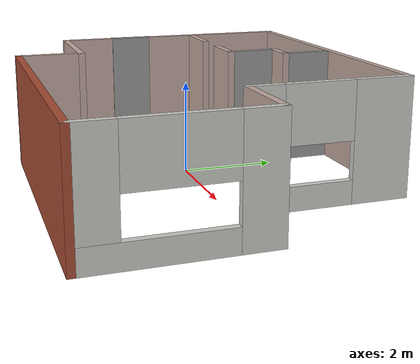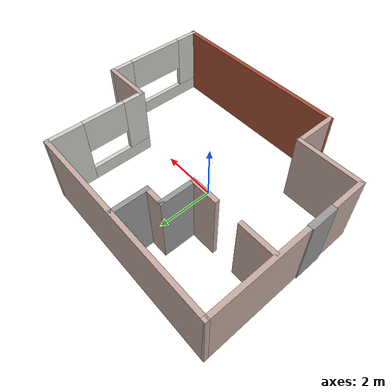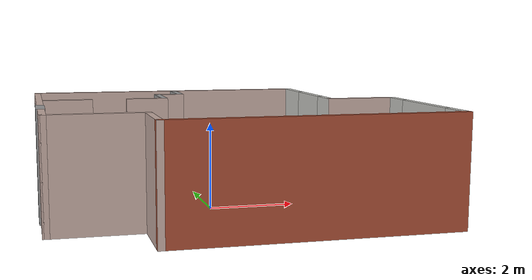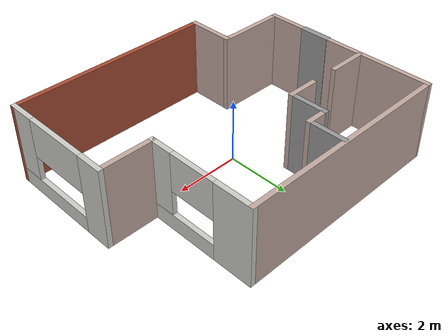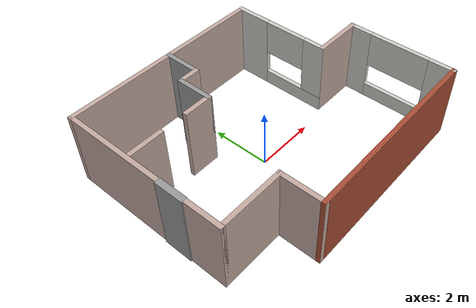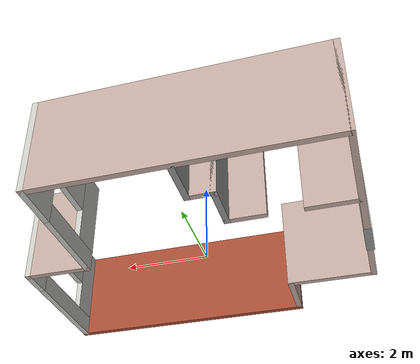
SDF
<?xml version='1.0'?>
<sdf version='1.6'>
  <model name='Untitled'>
    <pose frame=''>0.409678 0.119125 0 0 -0 0</pose>
    <link name='Door_0'>
      <collision name='Door_0_Collision'>
        <geometry>
          <box>
            <size>0.962 0.2 2.5</size>
          </box>
        </geometry>
        <pose frame=''>0 0 1.25 0 -0 0</pose>
      </collision>
      <visual name='Door_0_Visual'>
        <pose frame=''>0 0 1.25 0 -0 0</pose>
        <geometry>
          <box>
            <size>0.962 0.2 2.5</size>
          </box>
        </geometry>
        <material>
          <script>
            <uri>file://media/materials/scripts/gazebo.material</uri>
            <name>Gazebo/Grey</name>
          </script>
        </material>
      </visual>
      <pose frame=''>-4.23411 -0.424608 0 0 0 -1.57106</pose>
    </link>
    <link name='Wall_11'>
      <collision name='Wall_11_Collision'>
        <geometry>
          <box>
            <size>3.5 0.15 2.5</size>
          </box>
        </geometry>
        <pose frame=''>0 0 1.25 0 -0 0</pose>
      </collision>
      <visual name='Wall_11_Visual'>
        <pose frame=''>0 0 1.25 0 -0 0</pose>
        <geometry>
          <box>
            <size>3.5 0.15 2.5</size>
          </box>
        </geometry>
        <material>
          <script>
            <uri>file://media/materials/scripts/gazebo.material</uri>
            <name>Gazebo/Grey</name>
          </script>
          <ambient>0.760784 0.662745 0.627451 1</ambient>
        </material>
        <meta>
          <layer>0</layer>
        </meta>
      </visual>
      <pose frame=''>-4.225 1.8 0 0 0 -1.5708</pose>
    </link>
    <link name='Wall_13'>
      <collision name='Wall_13_Collision'>
        <geometry>
          <box>
            <size>1.25 0.15 2.5</size>
          </box>
        </geometry>
        <pose frame=''>0 0 1.25 0 -0 0</pose>
      </collision>
      <visual name='Wall_13_Visual'>
        <pose frame=''>0 0 1.25 0 -0 0</pose>
        <geometry>
          <box>
            <size>1.25 0.15 2.5</size>
          </box>
        </geometry>
        <material>
          <script>
            <uri>file://media/materials/scripts/gazebo.material</uri>
            <name>Gazebo/Grey</name>
          </script>
          <ambient>0.760784 0.662745 0.627451 1</ambient>
        </material>
        <meta>
          <layer>0</layer>
        </meta>
      </visual>
      <pose frame=''>-4.225 -1.525 0 0 0 -1.5708</pose>
    </link>
    <link name='Wall_16'>
      <collision name='Wall_16_Collision'>
        <geometry>
          <box>
            <size>2.25 0.15 2.5</size>
          </box>
        </geometry>
        <pose frame=''>0 0 1.25 0 -0 0</pose>
      </collision>
      <visual name='Wall_16_Visual'>
        <pose frame=''>0 0 1.25 0 -0 0</pose>
        <geometry>
          <box>
            <size>2.25 0.15 2.5</size>
          </box>
        </geometry>
        <material>
          <script>
            <uri>file://media/materials/scripts/gazebo.material</uri>
            <name>Gazebo/Grey</name>
          </script>
          <ambient>0.760784 0.662745 0.627451 1</ambient>
        </material>
        <meta>
          <layer>0</layer>
        </meta>
      </visual>
      <pose frame=''>-3.175 -2.075 0 0 -0 0</pose>
    </link>
    <link name='Wall_18'>
      <collision name='Wall_18_Collision'>
        <geometry>
          <box>
            <size>1.25 0.15 2.5</size>
          </box>
        </geometry>
        <pose frame=''>0 0 1.25 0 -0 0</pose>
      </collision>
      <visual name='Wall_18_Visual'>
        <pose frame=''>0 0 1.25 0 -0 0</pose>
        <geometry>
          <box>
            <size>1.25 0.15 2.5</size>
          </box>
        </geometry>
        <material>
          <script>
            <uri>file://media/materials/scripts/gazebo.material</uri>
            <name>Gazebo/Grey</name>
          </script>
          <ambient>1 1 1 1</ambient>
        </material>
        <meta>
          <layer>0</layer>
        </meta>
      </visual>
      <pose frame=''>-0.649535 2.87722 0 0 0 -1.5708</pose>
    </link>
    <link name='Wall_19'>
      <collision name='Wall_19_Collision'>
        <geometry>
          <box>
            <size>0.75 0.15 2.5</size>
          </box>
        </geometry>
        <pose frame=''>0 0 1.25 0 -0 0</pose>
      </collision>
      <visual name='Wall_19_Visual'>
        <pose frame=''>0 0 1.25 0 -0 0</pose>
        <geometry>
          <box>
            <size>0.75 0.15 2.5</size>
          </box>
        </geometry>
        <material>
          <script>
            <uri>file://media/materials/scripts/gazebo.material</uri>
            <name>Gazebo/Grey</name>
          </script>
          <ambient>0.760784 0.662745 0.627451 1</ambient>
        </material>
        <meta>
          <layer>0</layer>
        </meta>
      </visual>
      <pose frame=''>-0.949535 2.32722 0 0 -0 3.14159</pose>
    </link>
    <link name='Wall_2'>
      <collision name='Wall_2_Collision'>
        <geometry>
          <box>
            <size>7 0.15 2.5</size>
          </box>
        </geometry>
        <pose frame=''>0 0 1.25 0 -0 0</pose>
      </collision>
      <visual name='Wall_2_Visual'>
        <pose frame=''>0 0 1.25 0 -0 0</pose>
        <geometry>
          <box>
            <size>7 0.15 2.5</size>
          </box>
        </geometry>
        <material>
          <script>
            <uri>file://media/materials/scripts/gazebo.material</uri>
            <name>Gazebo/Grey</name>
          </script>
          <ambient>0.760784 0.662745 0.627451 1</ambient>
        </material>
        <meta>
          <layer>0</layer>
        </meta>
      </visual>
      <pose frame=''>-0.8 3.475 0 0 -0 0</pose>
    </link>
    <link name='Wall_20'>
      <collision name='Wall_20_Collision'>
        <geometry>
          <box>
            <size>1.25 0.15 2.5</size>
          </box>
        </geometry>
        <pose frame=''>0 0 1.25 0 -0 0</pose>
      </collision>
      <visual name='Wall_20_Visual'>
        <pose frame=''>0 0 1.25 0 -0 0</pose>
        <geometry>
          <box>
            <size>1.25 0.15 2.5</size>
          </box>
        </geometry>
        <material>
          <script>
            <uri>file://media/materials/scripts/gazebo.material</uri>
            <name>Gazebo/Grey</name>
          </script>
          <ambient>1 1 1 1</ambient>
        </material>
        <meta>
          <layer>0</layer>
        </meta>
      </visual>
      <pose frame=''>-1.24954 1.77722 0 0 0 -1.5708</pose>
    </link>
    <link name='Wall_21'>
      <collision name='Wall_21_Collision'>
        <geometry>
          <box>
            <size>1 0.15 2.5</size>
          </box>
        </geometry>
        <pose frame=''>0 0 1.25 0 -0 0</pose>
      </collision>
      <visual name='Wall_21_Visual'>
        <pose frame=''>0 0 1.25 0 -0 0</pose>
        <geometry>
          <box>
            <size>1 0.15 2.5</size>
          </box>
        </geometry>
        <material>
          <script>
            <uri>file://media/materials/scripts/gazebo.material</uri>
            <name>Gazebo/Grey</name>
          </script>
          <ambient>0.760784 0.662745 0.627451 1</ambient>
        </material>
        <meta>
          <layer>0</layer>
        </meta>
      </visual>
      <pose frame=''>-1.67454 1.22722 0 0 -0 3.14159</pose>
    </link>
    <link name='Wall_23'>
      <collision name='Wall_23_Collision'>
        <geometry>
          <box>
            <size>1.25 0.15 2.5</size>
          </box>
        </geometry>
        <pose frame=''>0 0 1.25 0 -0 0</pose>
      </collision>
      <visual name='Wall_23_Visual'>
        <pose frame=''>0 0 1.25 0 -0 0</pose>
        <geometry>
          <box>
            <size>1.25 0.15 2.5</size>
          </box>
        </geometry>
        <material>
          <script>
            <uri>file://media/materials/scripts/gazebo.material</uri>
            <name>Gazebo/Grey</name>
          </script>
          <ambient>0.760784 0.662745 0.627451 1</ambient>
        </material>
        <meta>
          <layer>0</layer>
        </meta>
      </visual>
      <pose frame=''>-3.60654 1.22722 0 0 -0 3.14159</pose>
    </link>
    <link name='Wall_3'>
      <pose frame=''>2.625 1.8 0 0 0 -1.5708</pose>
      <visual name='Wall_3_Visual_0'>
        <pose frame=''>-1.12576 0 1.25 0 -0 0</pose>
        <geometry>
          <box>
            <size>1.24849 0.15 2.5</size>
          </box>
        </geometry>
        <material>
          <script>
            <uri>file://media/materials/scripts/gazebo.material</uri>
            <name>Gazebo/CeilingTiled</name>
          </script>
          <ambient>1 1 1 1</ambient>
        </material>
        <meta>
          <layer>0</layer>
        </meta>
      </visual>
      <collision name='Wall_3_Collision_0'>
        <geometry>
          <box>
            <size>1.24849 0.15 2.5</size>
          </box>
        </geometry>
        <pose frame=''>-1.12576 0 1.25 0 -0 0</pose>
      </collision>
      <visual name='Wall_3_Visual_1'>
        <pose frame=''>0.624243 0 0.25 0 -0 0</pose>
        <geometry>
          <box>
            <size>2.25151 0.15 0.5</size>
          </box>
        </geometry>
        <material>
          <script>
            <uri>file://media/materials/scripts/gazebo.material</uri>
            <name>Gazebo/CeilingTiled</name>
          </script>
          <ambient>1 1 1 1</ambient>
        </material>
        <meta>
          <layer>0</layer>
        </meta>
      </visual>
      <collision name='Wall_3_Collision_1'>
        <geometry>
          <box>
            <size>2.25151 0.15 0.5</size>
          </box>
        </geometry>
        <pose frame=''>0.624243 0 0.25 0 -0 0</pose>
      </collision>
      <visual name='Wall_3_Visual_2'>
        <pose frame=''>1.35844 0 1.5 0 -0 0</pose>
        <geometry>
          <box>
            <size>0.783117 0.15 2</size>
          </box>
        </geometry>
        <material>
          <script>
            <uri>file://media/materials/scripts/gazebo.material</uri>
            <name>Gazebo/CeilingTiled</name>
          </script>
          <ambient>1 1 1 1</ambient>
        </material>
        <meta>
          <layer>0</layer>
        </meta>
      </visual>
      <collision name='Wall_3_Collision_2'>
        <geometry>
          <box>
            <size>0.783117 0.15 2</size>
          </box>
        </geometry>
        <pose frame=''>1.35844 0 1.5 0 -0 0</pose>
      </collision>
      <visual name='Wall_3_Visual_3'>
        <pose frame=''>0.232685 0 1.9 0 -0 0</pose>
        <geometry>
          <box>
            <size>1.4684 0.15 1.2</size>
          </box>
        </geometry>
        <material>
          <script>
            <uri>file://media/materials/scripts/gazebo.material</uri>
            <name>Gazebo/CeilingTiled</name>
          </script>
          <ambient>1 1 1 1</ambient>
        </material>
        <meta>
          <layer>0</layer>
        </meta>
      </visual>
      <collision name='Wall_3_Collision_3'>
        <geometry>
          <box>
            <size>1.4684 0.15 1.2</size>
          </box>
        </geometry>
        <pose frame=''>0.232685 0 1.9 0 -0 0</pose>
      </collision>
    </link>
    <link name='Wall_4'>
      <collision name='Wall_4_Collision'>
        <geometry>
          <box>
            <size>1.75 0.15 2.5</size>
          </box>
        </geometry>
        <pose frame=''>0 0 1.25 0 -0 0</pose>
      </collision>
      <visual name='Wall_4_Visual'>
        <pose frame=''>0 0 1.25 0 -0 0</pose>
        <geometry>
          <box>
            <size>1.75 0.15 2.5</size>
          </box>
        </geometry>
        <material>
          <script>
            <uri>file://media/materials/scripts/gazebo.material</uri>
            <name>Gazebo/Grey</name>
          </script>
          <ambient>0.760784 0.662745 0.627451 1</ambient>
        </material>
        <meta>
          <layer>0</layer>
        </meta>
      </visual>
      <pose frame=''>3.425 0.125 0 0 -0 0</pose>
    </link>
    <link name='Wall_5'>
      <pose frame=''>4.225 -1.675 0 0 0 -1.5708</pose>
      <visual name='Wall_5_Visual_0'>
        <pose frame=''>-1.45834 0 1.25 0 -0 0</pose>
        <geometry>
          <box>
            <size>0.833328 0.15 2.5</size>
          </box>
        </geometry>
        <material>
          <script>
            <uri>file://media/materials/scripts/gazebo.material</uri>
            <name>Gazebo/CeilingTiled</name>
          </script>
          <ambient>0.760784 0.662745 0.627451 1</ambient>
        </material>
        <meta>
          <layer>0</layer>
        </meta>
      </visual>
      <collision name='Wall_5_Collision_0'>
        <geometry>
          <box>
            <size>0.833328 0.15 2.5</size>
          </box>
        </geometry>
        <pose frame=''>-1.45834 0 1.25 0 -0 0</pose>
      </collision>
      <visual name='Wall_5_Visual_1'>
        <pose frame=''>0.416664 0 0.25 0 -0 0</pose>
        <geometry>
          <box>
            <size>2.91667 0.15 0.5</size>
          </box>
        </geometry>
        <material>
          <script>
            <uri>file://media/materials/scripts/gazebo.material</uri>
            <name>Gazebo/CeilingTiled</name>
          </script>
          <ambient>0.760784 0.662745 0.627451 1</ambient>
        </material>
        <meta>
          <layer>0</layer>
        </meta>
      </visual>
      <collision name='Wall_5_Collision_1'>
        <geometry>
          <box>
            <size>2.91667 0.15 0.5</size>
          </box>
        </geometry>
        <pose frame=''>0.416664 0 0.25 0 -0 0</pose>
      </collision>
      <visual name='Wall_5_Visual_2'>
        <pose frame=''>1.43612 0 1.5 0 -0 0</pose>
        <geometry>
          <box>
            <size>0.877768 0.15 2</size>
          </box>
        </geometry>
        <material>
          <script>
            <uri>file://media/materials/scripts/gazebo.material</uri>
            <name>Gazebo/CeilingTiled</name>
          </script>
          <ambient>0.760784 0.662745 0.627451 1</ambient>
        </material>
        <meta>
          <layer>0</layer>
        </meta>
      </visual>
      <collision name='Wall_5_Collision_2'>
        <geometry>
          <box>
            <size>0.877768 0.15 2</size>
          </box>
        </geometry>
        <pose frame=''>1.43612 0 1.5 0 -0 0</pose>
      </collision>
      <visual name='Wall_5_Visual_3'>
        <pose frame=''>-0.02222 0 1.9 0 -0 0</pose>
        <geometry>
          <box>
            <size>2.0389 0.15 1.2</size>
          </box>
        </geometry>
        <material>
          <script>
            <uri>file://media/materials/scripts/gazebo.material</uri>
            <name>Gazebo/CeilingTiled</name>
          </script>
          <ambient>0.760784 0.662745 0.627451 1</ambient>
        </material>
        <meta>
          <layer>0</layer>
        </meta>
      </visual>
      <collision name='Wall_5_Collision_3'>
        <geometry>
          <box>
            <size>2.0389 0.15 1.2</size>
          </box>
        </geometry>
        <pose frame=''>-0.02222 0 1.9 0 -0 0</pose>
      </collision>
    </link>
    <link name='Wall_6'>
      <collision name='Wall_6_Collision'>
        <geometry>
          <box>
            <size>6.5 0.15 2.5</size>
          </box>
        </geometry>
        <pose frame=''>0 0 1.25 0 -0 0</pose>
      </collision>
      <visual name='Wall_6_Visual'>
        <pose frame=''>0 0 1.25 0 -0 0</pose>
        <geometry>
          <box>
            <size>6.5 0.15 2.5</size>
          </box>
        </geometry>
        <material>
          <script>
            <uri>file://media/materials/scripts/gazebo.material</uri>
            <name>Gazebo/Bricks</name>
          </script>
          <ambient>1 1 1 1</ambient>
        </material>
        <meta>
          <layer>0</layer>
        </meta>
      </visual>
      <pose frame=''>1.05 -3.475 0 0 -0 3.14159</pose>
    </link>
    <link name='Wall_7'>
      <collision name='Wall_7_Collision'>
        <geometry>
          <box>
            <size>1.5 0.15 2.5</size>
          </box>
        </geometry>
        <pose frame=''>0 0 1.25 0 -0 0</pose>
      </collision>
      <visual name='Wall_7_Visual'>
        <pose frame=''>0 0 1.25 0 -0 0</pose>
        <geometry>
          <box>
            <size>1.5 0.15 2.5</size>
          </box>
        </geometry>
        <material>
          <script>
            <uri>file://media/materials/scripts/gazebo.material</uri>
            <name>Gazebo/Grey</name>
          </script>
          <ambient>0.760784 0.662745 0.627451 1</ambient>
        </material>
        <meta>
          <layer>0</layer>
        </meta>
      </visual>
      <pose frame=''>-2.125 -2.8 0 0 -0 1.5708</pose>
    </link>
    <static>1</static>
  </model>
</sdf>
